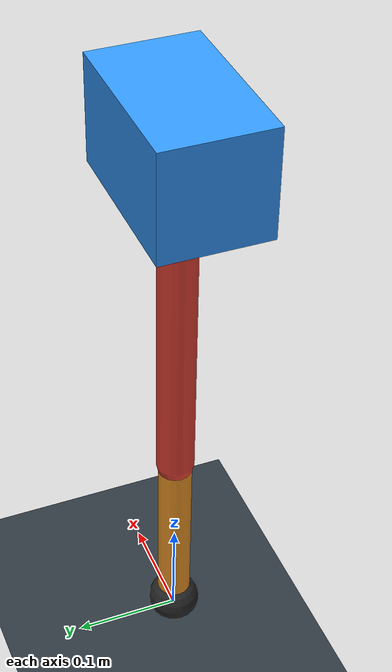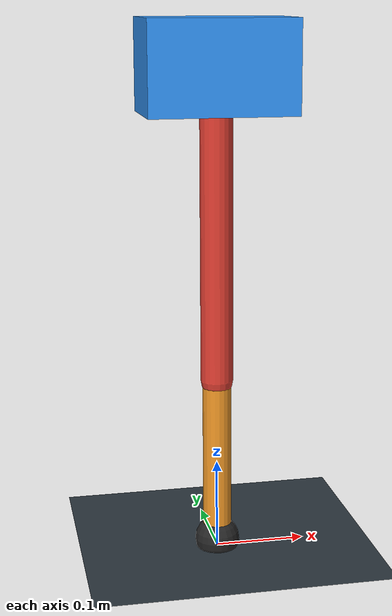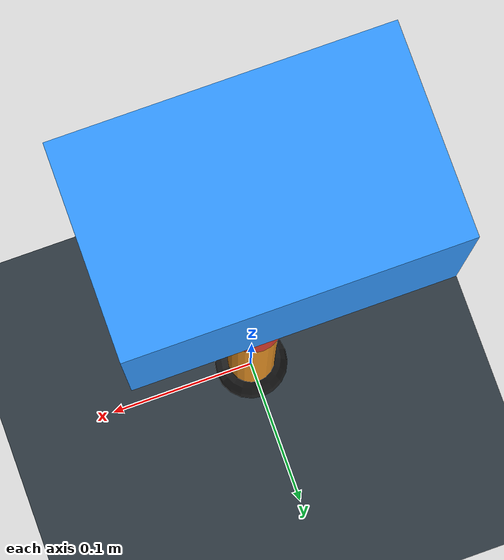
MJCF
<mujoco model="single_axis_two_bar">
  <compiler angle="radian" inertiafromgeom="true"/>
  <option timestep="0.001" integrator="implicitfast" gravity="0 0 -9.81"/>
  <default>
    <joint damping="0.08"/>
    <geom friction="1.2 0.01 0.0001" condim="3"/>
  </default>
  <worldbody>
    <geom name="floor" type="plane" size="5 5 0.1" rgba="0.18 0.22 0.25 1"/>
    <body name="carriage" pos="0 0 0.5411650760236624">
      <joint name="pole_slide" type="slide" axis="0 0 1"/>
      <geom name="payload" type="box" size="0.08 0.05 0.05" mass="3.1555602950107025" rgba="0.2 0.6 1 1"/>
      <body name="thigh" pos="0 0 0">
        <joint name="hip" type="hinge" axis="0 1 0"/>
        <geom name="thigh_link" type="capsule" fromto="0 0 0 0 0 -0.3445320926785257" size="0.018" mass="0.24548366862338675" rgba="0.9 0.25 0.2 1"/>
        <body name="shank" pos="0 0 -0.3445320926785257">
          <joint name="knee" type="hinge" axis="0 1 0"/>
          <geom name="shank_link" type="capsule" fromto="0 0 0 0 0 -0.18759685167576545" size="0.016" mass="0.1336652356926708" rgba="0.95 0.6 0.15 1"/>
          <geom name="foot" type="sphere" pos="0 0 -0.18759685167576545" size="0.025" mass="0.03" rgba="0.15 0.15 0.15 1"/>
          <site name="toe" pos="0 0 -0.18759685167576545" size="0.008"/>
        </body>
      </body>
    </body>
  </worldbody>
  <actuator>
    <motor name="hip_motor" joint="hip" ctrlrange="-17.96166706181002 17.96166706181002"/>
    <motor name="knee_motor" joint="knee" ctrlrange="-166.68537451699666 166.68537451699666"/>
  </actuator>
</mujoco>
